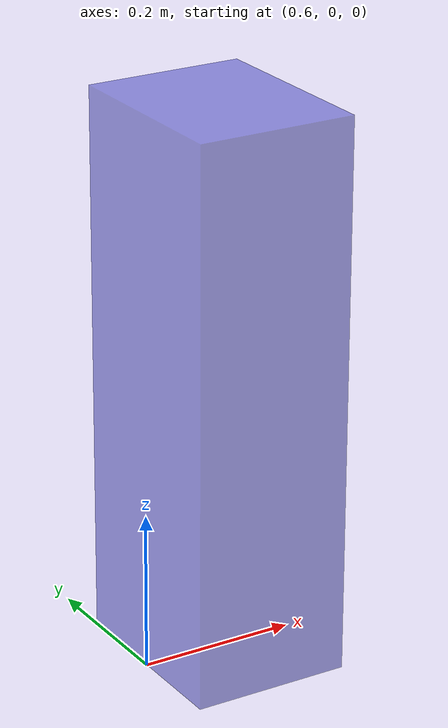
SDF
<?xml version="1.0" ?>
<sdf version="1.6">
  <model name="middle_fixed_box">
    <static>true</static>
    <link name="box_link">
      <visual name="visual">
        <geometry>
          <box>
            <size>0.2 0.25 0.7</size>
          </box>
        </geometry>
        <material>
          <diffuse>0.2 0.2 0.8 0.5</diffuse>   <!-- Blue -->
          <specular>0.1 0.1 0.4 1.0</specular>
        </material>
      </visual>
      <collision name="collision">
        <geometry>
          <box>
            <size>0.2 0.25 0.7</size>
          </box>
        </geometry>
        <surface>
          <friction>
            <ode>
              <mu>0.8</mu>
              <mu2>0.8</mu2>
            </ode>
          </friction>
        </surface>
      </collision>
      <!-- Positioned between ground and movable box -->
      <pose>0.7 0.0 0.35 0 0 0</pose>
    </link>
  </model>
</sdf>
